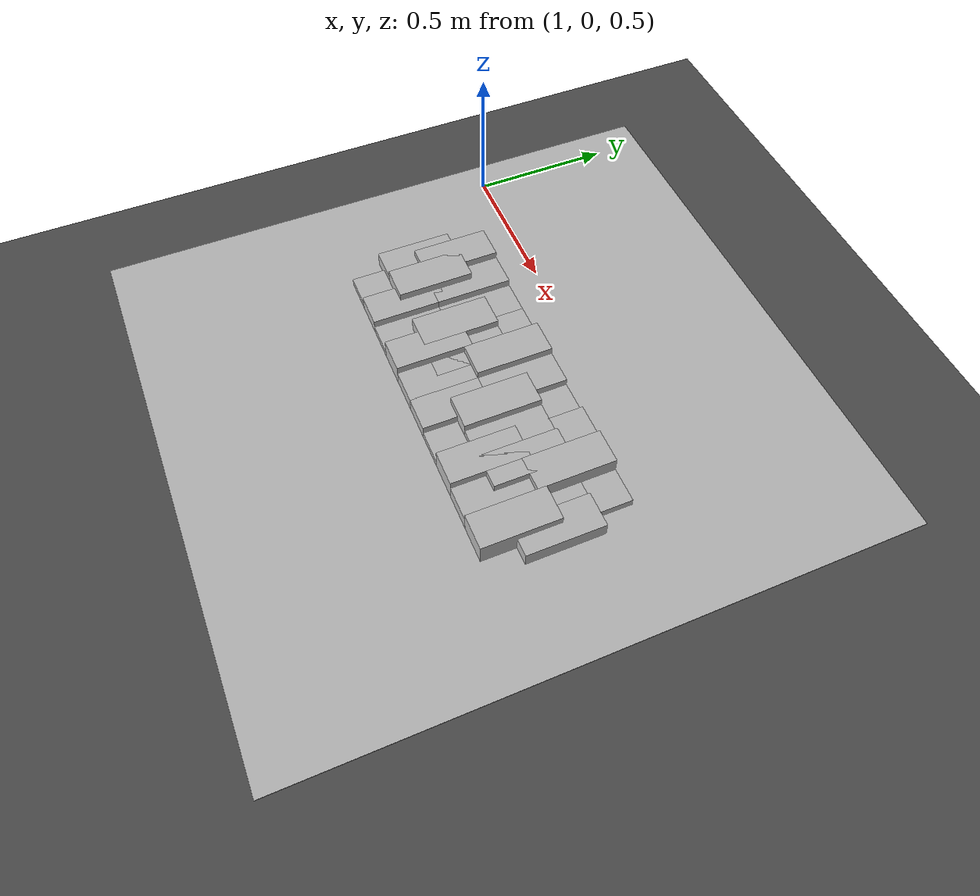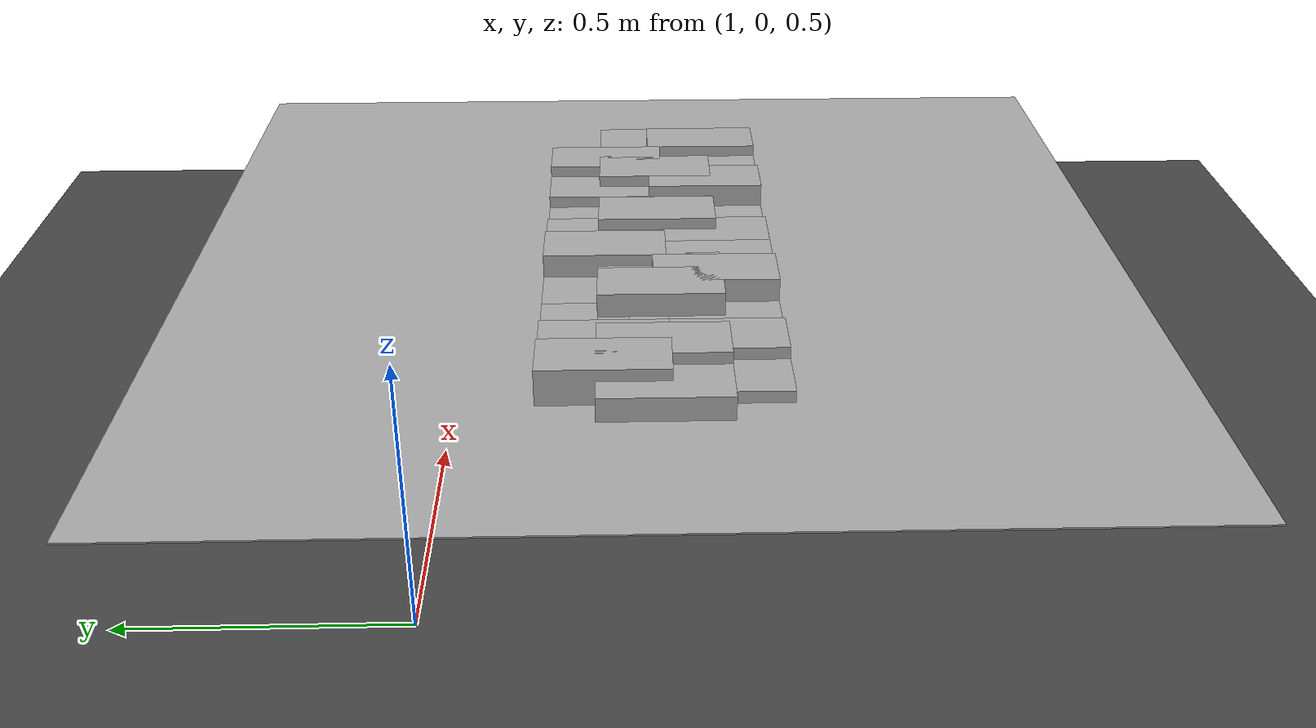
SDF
<sdf version="1.6">
 <world name="default">
  <model name="ground_plane">
   <static>1</static>
   <link name="link">
    <collision name="collision">
     <geometry><plane><normal>0 0 1</normal><size>100 100</size></plane></geometry>
     <surface><friction><ode><mu>100</mu><mu2>50</mu2></ode></friction></surface>
    </collision>
    <visual name="visual">
     <cast_shadows>0</cast_shadows>
     <geometry><plane><normal>0 0 1</normal><size>100 100</size></plane></geometry>
     <material>
      <script><uri>file://media/materials/scripts/gazebo.material</uri><name>Gazebo/Grey</name></script>
     </material>
    </visual>
   </link>
  </model>
  <model name="frc2016_roughterrain_0">
   <link name="link_clone_7">
    <pose>2.10114 -0.449355 -0.073164 0 -0 0</pose>
    <inertial>
     <inertia><ixx>nan</ixx><ixy>0</ixy><ixz>0</ixz><iyy>nan</iyy><iyz>0</iyz><izz>nan</izz></inertia>
     <mass>0</mass>
    </inertial>
    <visual name="row1_block3_md">
     <pose>0.28575 0.1143 0.10968 0 -0 0</pose>
     <geometry><box><size>0.115452 0.257474 0.0508</size></box></geometry>
     <material><shader type="pixel"/></material>
    </visual>
    <visual name="row1_block5_md">
     <pose>0.05715 0.1143 0.10968 0 -0 0</pose>
     <geometry><box><size>0.115452 0.257474 0.0508</size></box></geometry>
     <material><shader type="pixel"/></material>
    </visual>
    <visual name="row1_block4_sm">
     <pose>0.17145 0.1143 0.09698 0 -0 0</pose>
     <geometry><box><size>0.115452 0.257474 0.0254</size></box></geometry>
     <material><shader type="pixel"/></material>
    </visual>
    <visual name="platform">
     <pose>0 0 0.08269 0 -0 0</pose>
     <geometry><box><size>1.91826 2.01688 0.003175</size></box></geometry>
     <material><shader type="pixel"/></material>
    </visual>
    <visual name="row1_block1_sm">
     <pose>0.51435 0.1143 0.09698 0 -0 0</pose>
     <geometry><box><size>0.115452 0.257474 0.0254</size></box></geometry>
     <material><shader type="pixel"/></material>
    </visual>
    <visual name="row1_block2_lg">
     <pose>0.40005 0.1143 0.12238 0 -0 0</pose>
     <geometry><box><size>0.115452 0.257474 0.0762</size></box></geometry>
     <material><shader type="pixel"/></material>
    </visual>
    <visual name="row1_block6_lg">
     <pose>-0.05715 0.1143 0.12238 0 -0 0</pose>
     <geometry><box><size>0.115452 0.257474 0.0762</size></box></geometry>
     <material><shader type="pixel"/></material>
    </visual>
    <visual name="row1_block7_sm">
     <pose>-0.17145 0.1143 0.09698 0 -0 0</pose>
     <geometry><box><size>0.115452 0.257474 0.0254</size></box></geometry>
     <material><shader type="pixel"/></material>
    </visual>
    <visual name="row1_block9_md">
     <pose>-0.40005 0.1143 0.10968 0 -0 0</pose>
     <geometry><box><size>0.115452 0.257474 0.0508</size></box></geometry>
     <material><shader type="pixel"/></material>
    </visual>
    <visual name="row1_block8_sm">
     <pose>-0.28575 0.1143 0.09698 0 -0 0</pose>
     <geometry><box><size>0.115452 0.257474 0.0254</size></box></geometry>
     <material><shader type="pixel"/></material>
    </visual>
    <visual name="row1_block10_lg">
     <pose>-0.51435 0.1143 0.12238 0 -0 0</pose>
     <geometry><box><size>0.115452 0.257474 0.0762</size></box></geometry>
     <material><shader type="pixel"/></material>
    </visual>
    <visual name="row2_block1_md">
     <pose>0.5715 0 0.10968 0 -0 0</pose>
     <geometry><box><size>0.115452 0.257474 0.0508</size></box></geometry>
     <material><shader type="pixel"/></material>
    </visual>
    <visual name="row2_block3_lg">
     <pose>0.3429 0 0.12238 0 -0 0</pose>
     <geometry><box><size>0.115452 0.257474 0.0762</size></box></geometry>
     <material><shader type="pixel"/></material>
    </visual>
    <visual name="row2_block2_sm">
     <pose>0.4572 0 0.09698 0 -0 0</pose>
     <geometry><box><size>0.115452 0.257474 0.0254</size></box></geometry>
     <material><shader type="pixel"/></material>
    </visual>
    <visual name="row2_block4_md">
     <pose>0.2286 0 0.10968 0 -0 0</pose>
     <geometry><box><size>0.115452 0.257474 0.0508</size></box></geometry>
     <material><shader type="pixel"/></material>
    </visual>
    <visual name="row2_block5_lg">
     <pose>0.1143 0 0.12238 0 -0 0</pose>
     <geometry><box><size>0.115452 0.257474 0.0762</size></box></geometry>
     <material><shader type="pixel"/></material>
    </visual>
    <visual name="row2_block6_sm">
     <pose>0 0 0.09698 0 -0 0</pose>
     <geometry><box><size>0.115452 0.257474 0.0254</size></box></geometry>
     <material><shader type="pixel"/></material>
    </visual>
    <visual name="row2_block7_md">
     <pose>-0.1143 0 0.10968 0 -0 0</pose>
     <geometry><box><size>0.115452 0.257474 0.0508</size></box></geometry>
     <material><shader type="pixel"/></material>
    </visual>
    <visual name="row2_block8_lg">
     <pose>-0.2286 0 0.12238 0 -0 0</pose>
     <geometry><box><size>0.115452 0.257474 0.0762</size></box></geometry>
     <material><shader type="pixel"/></material>
    </visual>
    <visual name="row2_block9_sm">
     <pose>-0.3429 0 0.09698 0 -0 0</pose>
     <geometry><box><size>0.115452 0.257474 0.0254</size></box></geometry>
     <material><shader type="pixel"/></material>
    </visual>
    <visual name="row2_block10_lg">
     <pose>-0.4572 0 0.12238 0 -0 0</pose>
     <geometry><box><size>0.115452 0.257474 0.0762</size></box></geometry>
     <material><shader type="pixel"/></material>
    </visual>
    <visual name="row2_block11_md">
     <pose>-0.5715 0 0.10968 0 -0 0</pose>
     <geometry><box><size>0.115452 0.257474 0.0508</size></box></geometry>
     <material><shader type="pixel"/></material>
    </visual>
    <visual name="row3_block2_md">
     <pose>0.40005 -0.1143 0.10968 0 -0 0</pose>
     <geometry><box><size>0.115452 0.257474 0.0508</size></box></geometry>
     <material><shader type="pixel"/></material>
    </visual>
    <visual name="row3_block1_lg">
     <pose>0.51435 -0.1143 0.12238 0 -0 0</pose>
     <geometry><box><size>0.115452 0.257474 0.0762</size></box></geometry>
     <material><shader type="pixel"/></material>
    </visual>
    <visual name="row3_block3_lg">
     <pose>0.28575 -0.1143 0.12238 0 -0 0</pose>
     <geometry><box><size>0.115452 0.257474 0.0762</size></box></geometry>
     <material><shader type="pixel"/></material>
    </visual>
    <visual name="row3_block4_sm">
     <pose>0.17145 -0.1143 0.09698 0 -0 0</pose>
     <geometry><box><size>0.115452 0.257474 0.0254</size></box></geometry>
     <material><shader type="pixel"/></material>
    </visual>
    <visual name="row3_block5_md">
     <pose>0.05715 -0.1143 0.10968 0 -0 0</pose>
     <geometry><box><size>0.115452 0.257474 0.0508</size></box></geometry>
     <material><shader type="pixel"/></material>
    </visual>
    <visual name="row3_block6_md">
     <pose>-0.05715 -0.1143 0.10968 0 -0 0</pose>
     <geometry><box><size>0.115452 0.257474 0.0508</size></box></geometry>
     <material><shader type="pixel"/></material>
    </visual>
    <visual name="row3_block8_sm">
     <pose>-0.28575 -0.1143 0.09698 0 -0 0</pose>
     <geometry><box><size>0.115452 0.257474 0.0254</size></box></geometry>
     <material><shader type="pixel"/></material>
    </visual>
    <visual name="row3_block7_lg">
     <pose>-0.17145 -0.1143 0.12238 0 -0 0</pose>
     <geometry><box><size>0.115452 0.257474 0.0762</size></box></geometry>
     <material><shader type="pixel"/></material>
    </visual>
    <visual name="row3_block9_md">
     <pose>-0.40005 -0.1143 0.10968 0 -0 0</pose>
     <geometry><box><size>0.115452 0.257474 0.0508</size></box></geometry>
     <material><shader type="pixel"/></material>
    </visual>
    <visual name="row3_block10_sm">
     <pose>-0.51435 -0.1143 0.09698 0 -0 0</pose>
     <geometry><box><size>0.115452 0.257474 0.0254</size></box></geometry>
     <material><shader type="pixel"/></material>
    </visual>
    <collision name="row3_block6_md_0">
     <pose>-0.05715 -0.1143 0.10968 0 -0 0</pose>
     <geometry><box><size>0.115452 0.257474 0.0508</size></box></geometry>
     <surface>
      <friction>
       <ode><mu>1</mu><mu2>1</mu2><fdir1>0 0 0</fdir1><slip1>0</slip1><slip2>0</slip2></ode>
       <torsional>
        <coefficient>1</coefficient>
        <patch_radius>0</patch_radius>
        <surface_radius>0</surface_radius>
        <use_patch_radius>1</use_patch_radius>
        <ode><slip>0</slip></ode>
       </torsional>
      </friction>
      <bounce><restitution_coefficient>0</restitution_coefficient><threshold>1e+06</threshold></bounce>
      <contact>
       <collide_without_contact>0</collide_without_contact>
       <collide_without_contact_bitmask>1</collide_without_contact_bitmask>
       <collide_bitmask>1</collide_bitmask>
       <ode>
        <soft_cfm>0</soft_cfm>
        <soft_erp>0.2</soft_erp>
        <kp>1e+13</kp>
        <kd>1</kd>
        <max_vel>0.01</max_vel>
        <min_depth>0</min_depth>
       </ode>
       <bullet>
        <split_impulse>1</split_impulse>
        <split_impulse_penetration_threshold>-0.01</split_impulse_penetration_threshold>
        <soft_cfm>0</soft_cfm>
        <soft_erp>0.2</soft_erp>
        <kp>1e+13</kp>
        <kd>1</kd>
       </bullet>
      </contact>
     </surface>
    </collision>
    <collision name="row3_block8_sm_0">
     <pose>-0.28575 -0.1143 0.09698 0 -0 0</pose>
     <geometry><box><size>0.115452 0.257474 0.0254</size></box></geometry>
     <surface>
      <friction>
       <ode><mu>1</mu><mu2>1</mu2><fdir1>0 0 0</fdir1><slip1>0</slip1><slip2>0</slip2></ode>
       <torsional>
        <coefficient>1</coefficient>
        <patch_radius>0</patch_radius>
        <surface_radius>0</surface_radius>
        <use_patch_radius>1</use_patch_radius>
        <ode><slip>0</slip></ode>
       </torsional>
      </friction>
      <bounce><restitution_coefficient>0</restitution_coefficient><threshold>1e+06</threshold></bounce>
      <contact>
       <collide_without_contact>0</collide_without_contact>
       <collide_without_contact_bitmask>1</collide_without_contact_bitmask>
       <collide_bitmask>1</collide_bitmask>
       <ode>
        <soft_cfm>0</soft_cfm>
        <soft_erp>0.2</soft_erp>
        <kp>1e+13</kp>
        <kd>1</kd>
        <max_vel>0.01</max_vel>
        <min_depth>0</min_depth>
       </ode>
       <bullet>
        <split_impulse>1</split_impulse>
        <split_impulse_penetration_threshold>-0.01</split_impulse_penetration_threshold>
        <soft_cfm>0</soft_cfm>
        <soft_erp>0.2</soft_erp>
        <kp>1e+13</kp>
        <kd>1</kd>
       </bullet>
      </contact>
     </surface>
    </collision>
    <collision name="row2_block5_lg_0">
     <pose>0.1143 0 0.12238 0 -0 0</pose>
     <geometry><box><size>0.115452 0.257474 0.0762</size></box></geometry>
     <surface>
      <friction>
       <ode><mu>1</mu><mu2>1</mu2><fdir1>0 0 0</fdir1><slip1>0</slip1><slip2>0</slip2></ode>
       <torsional>
        <coefficient>1</coefficient>
        <patch_radius>0</patch_radius>
        <surface_radius>0</surface_radius>
        <use_patch_radius>1</use_patch_radius>
        <ode><slip>0</slip></ode>
       </torsional>
      </friction>
      <bounce><restitution_coefficient>0</restitution_coefficient><threshold>1e+06</threshold></bounce>
      <contact>
       <collide_without_contact>0</collide_without_contact>
       <collide_without_contact_bitmask>1</collide_without_contact_bitmask>
       <collide_bitmask>1</collide_bitmask>
       <ode>
        <soft_cfm>0</soft_cfm>
        <soft_erp>0.2</soft_erp>
        <kp>1e+13</kp>
        <kd>1</kd>
        <max_vel>0.01</max_vel>
        <min_depth>0</min_depth>
       </ode>
       <bullet>
        <split_impulse>1</split_impulse>
        <split_impulse_penetration_threshold>-0.01</split_impulse_penetration_threshold>
        <soft_cfm>0</soft_cfm>
        <soft_erp>0.2</soft_erp>
        <kp>1e+13</kp>
        <kd>1</kd>
       </bullet>
      </contact>
     </surface>
    </collision>
    <collision name="platform_0">
     <pose>0 0 0.08269 0 -0 0</pose>
     <geometry><box><size>1.91826 2.01688 0.003175</size></box></geometry>
     <surface>
      <friction>
       <ode><mu>1</mu><mu2>1</mu2><fdir1>0 0 0</fdir1><slip1>0</slip1><slip2>0</slip2></ode>
       <torsional>
        <coefficient>1</coefficient>
        <patch_radius>0</patch_radius>
        <surface_radius>0</surface_radius>
        <use_patch_radius>1</use_patch_radius>
        <ode><slip>0</slip></ode>
       </torsional>
      </friction>
      <bounce><restitution_coefficient>0</restitution_coefficient><threshold>1e+06</threshold></bounce>
      <contact>
       <collide_without_contact>0</collide_without_contact>
       <collide_without_contact_bitmask>1</collide_without_contact_bitmask>
       <collide_bitmask>1</collide_bitmask>
       <ode>
        <soft_cfm>0</soft_cfm>
        <soft_erp>0.2</soft_erp>
        <kp>1e+13</kp>
        <kd>1</kd>
        <max_vel>0.01</max_vel>
        <min_depth>0</min_depth>
       </ode>
       <bullet>
        <split_impulse>1</split_impulse>
        <split_impulse_penetration_threshold>-0.01</split_impulse_penetration_threshold>
        <soft_cfm>0</soft_cfm>
        <soft_erp>0.2</soft_erp>
        <kp>1e+13</kp>
        <kd>1</kd>
       </bullet>
      </contact>
     </surface>
    </collision>
    <collision name="row1_block2_lg_0">
     <pose>0.40005 0.1143 0.12238 0 -0 0</pose>
     <geometry><box><size>0.115452 0.257474 0.0762</size></box></geometry>
     <surface>
      <friction>
       <ode><mu>1</mu><mu2>1</mu2><fdir1>0 0 0</fdir1><slip1>0</slip1><slip2>0</slip2></ode>
       <torsional>
        <coefficient>1</coefficient>
        <patch_radius>0</patch_radius>
        <surface_radius>0</surface_radius>
        <use_patch_radius>1</use_patch_radius>
        <ode><slip>0</slip></ode>
       </torsional>
      </friction>
      <bounce><restitution_coefficient>0</restitution_coefficient><threshold>1e+06</threshold></bounce>
      <contact>
       <collide_without_contact>0</collide_without_contact>
       <collide_without_contact_bitmask>1</collide_without_contact_bitmask>
       <collide_bitmask>1</collide_bitmask>
       <ode>
        <soft_cfm>0</soft_cfm>
        <soft_erp>0.2</soft_erp>
        <kp>1e+13</kp>
        <kd>1</kd>
        <max_vel>0.01</max_vel>
        <min_depth>0</min_depth>
       </ode>
       <bullet>
        <split_impulse>1</split_impulse>
        <split_impulse_penetration_threshold>-0.01</split_impulse_penetration_threshold>
        <soft_cfm>0</soft_cfm>
        <soft_erp>0.2</soft_erp>
        <kp>1e+13</kp>
        <kd>1</kd>
       </bullet>
      </contact>
     </surface>
    </collision>
    <collision name="row1_block3_md_0">
     <pose>0.28575 0.1143 0.10968 0 -0 0</pose>
     <geometry><box><size>0.115452 0.257474 0.0508</size></box></geometry>
     <surface>
      <friction>
       <ode><mu>1</mu><mu2>1</mu2><fdir1>0 0 0</fdir1><slip1>0</slip1><slip2>0</slip2></ode>
       <torsional>
        <coefficient>1</coefficient>
        <patch_radius>0</patch_radius>
        <surface_radius>0</surface_radius>
        <use_patch_radius>1</use_patch_radius>
        <ode><slip>0</slip></ode>
       </torsional>
      </friction>
      <bounce><restitution_coefficient>0</restitution_coefficient><threshold>1e+06</threshold></bounce>
      <contact>
       <collide_without_contact>0</collide_without_contact>
       <collide_without_contact_bitmask>1</collide_without_contact_bitmask>
       <collide_bitmask>1</collide_bitmask>
       <ode>
        <soft_cfm>0</soft_cfm>
        <soft_erp>0.2</soft_erp>
        <kp>1e+13</kp>
        <kd>1</kd>
        <max_vel>0.01</max_vel>
        <min_depth>0</min_depth>
       </ode>
       <bullet>
        <split_impulse>1</split_impulse>
        <split_impulse_penetration_threshold>-0.01</split_impulse_penetration_threshold>
        <soft_cfm>0</soft_cfm>
        <soft_erp>0.2</soft_erp>
        <kp>1e+13</kp>
        <kd>1</kd>
       </bullet>
      </contact>
     </surface>
    </collision>
    <collision name="row1_block1_sm_0">
     <pose>0.51435 0.1143 0.09698 0 -0 0</pose>
     <geometry><box><size>0.115452 0.257474 0.0254</size></box></geometry>
     <surface>
      <friction>
       <ode><mu>1</mu><mu2>1</mu2><fdir1>0 0 0</fdir1><slip1>0</slip1><slip2>0</slip2></ode>
       <torsional>
        <coefficient>1</coefficient>
        <patch_radius>0</patch_radius>
        <surface_radius>0</surface_radius>
        <use_patch_radius>1</use_patch_radius>
        <ode><slip>0</slip></ode>
       </torsional>
      </friction>
      <bounce><restitution_coefficient>0</restitution_coefficient><threshold>1e+06</threshold></bounce>
      <contact>
       <collide_without_contact>0</collide_without_contact>
       <collide_without_contact_bitmask>1</collide_without_contact_bitmask>
       <collide_bitmask>1</collide_bitmask>
       <ode>
        <soft_cfm>0</soft_cfm>
        <soft_erp>0.2</soft_erp>
        <kp>1e+13</kp>
        <kd>1</kd>
        <max_vel>0.01</max_vel>
        <min_depth>0</min_depth>
       </ode>
       <bullet>
        <split_impulse>1</split_impulse>
        <split_impulse_penetration_threshold>-0.01</split_impulse_penetration_threshold>
        <soft_cfm>0</soft_cfm>
        <soft_erp>0.2</soft_erp>
        <kp>1e+13</kp>
        <kd>1</kd>
       </bullet>
      </contact>
     </surface>
    </collision>
    <collision name="row1_block5_md_0">
     <pose>0.05715 0.1143 0.10968 0 -0 0</pose>
     <geometry><box><size>0.115452 0.257474 0.0508</size></box></geometry>
     <surface>
      <friction>
       <ode><mu>1</mu><mu2>1</mu2><fdir1>0 0 0</fdir1><slip1>0</slip1><slip2>0</slip2></ode>
       <torsional>
        <coefficient>1</coefficient>
        <patch_radius>0</patch_radius>
        <surface_radius>0</surface_radius>
        <use_patch_radius>1</use_patch_radius>
        <ode><slip>0</slip></ode>
       </torsional>
      </friction>
      <bounce><restitution_coefficient>0</restitution_coefficient><threshold>1e+06</threshold></bounce>
      <contact>
       <collide_without_contact>0</collide_without_contact>
       <collide_without_contact_bitmask>1</collide_without_contact_bitmask>
       <collide_bitmask>1</collide_bitmask>
       <ode>
        <soft_cfm>0</soft_cfm>
        <soft_erp>0.2</soft_erp>
        <kp>1e+13</kp>
        <kd>1</kd>
        <max_vel>0.01</max_vel>
        <min_depth>0</min_depth>
       </ode>
       <bullet>
        <split_impulse>1</split_impulse>
        <split_impulse_penetration_threshold>-0.01</split_impulse_penetration_threshold>
        <soft_cfm>0</soft_cfm>
        <soft_erp>0.2</soft_erp>
        <kp>1e+13</kp>
        <kd>1</kd>
       </bullet>
      </contact>
     </surface>
    </collision>
    <collision name="row1_block4_sm_0">
     <pose>0.17145 0.1143 0.09698 0 -0 0</pose>
     <geometry><box><size>0.115452 0.257474 0.0254</size></box></geometry>
     <surface>
      <friction>
       <ode><mu>1</mu><mu2>1</mu2><fdir1>0 0 0</fdir1><slip1>0</slip1><slip2>0</slip2></ode>
       <torsional>
        <coefficient>1</coefficient>
        <patch_radius>0</patch_radius>
        <surface_radius>0</surface_radius>
        <use_patch_radius>1</use_patch_radius>
        <ode><slip>0</slip></ode>
       </torsional>
      </friction>
      <bounce><restitution_coefficient>0</restitution_coefficient><threshold>1e+06</threshold></bounce>
      <contact>
       <collide_without_contact>0</collide_without_contact>
       <collide_without_contact_bitmask>1</collide_without_contact_bitmask>
       <collide_bitmask>1</collide_bitmask>
       <ode>
        <soft_cfm>0</soft_cfm>
        <soft_erp>0.2</soft_erp>
        <kp>1e+13</kp>
        <kd>1</kd>
        <max_vel>0.01</max_vel>
        <min_depth>0</min_depth>
       </ode>
       <bullet>
        <split_impulse>1</split_impulse>
        <split_impulse_penetration_threshold>-0.01</split_impulse_penetration_threshold>
        <soft_cfm>0</soft_cfm>
        <soft_erp>0.2</soft_erp>
        <kp>1e+13</kp>
        <kd>1</kd>
       </bullet>
      </contact>
     </surface>
    </collision>
    <collision name="row1_block6_lg_0">
     <pose>-0.05715 0.1143 0.12238 0 -0 0</pose>
     <geometry><box><size>0.115452 0.257474 0.0762</size></box></geometry>
     <surface>
      <friction>
       <ode><mu>1</mu><mu2>1</mu2><fdir1>0 0 0</fdir1><slip1>0</slip1><slip2>0</slip2></ode>
       <torsional>
        <coefficient>1</coefficient>
        <patch_radius>0</patch_radius>
        <surface_radius>0</surface_radius>
        <use_patch_radius>1</use_patch_radius>
        <ode><slip>0</slip></ode>
       </torsional>
      </friction>
      <bounce><restitution_coefficient>0</restitution_coefficient><threshold>1e+06</threshold></bounce>
      <contact>
       <collide_without_contact>0</collide_without_contact>
       <collide_without_contact_bitmask>1</collide_without_contact_bitmask>
       <collide_bitmask>1</collide_bitmask>
       <ode>
        <soft_cfm>0</soft_cfm>
        <soft_erp>0.2</soft_erp>
        <kp>1e+13</kp>
        <kd>1</kd>
        <max_vel>0.01</max_vel>
        <min_depth>0</min_depth>
       </ode>
       <bullet>
        <split_impulse>1</split_impulse>
        <split_impulse_penetration_threshold>-0.01</split_impulse_penetration_threshold>
        <soft_cfm>0</soft_cfm>
        <soft_erp>0.2</soft_erp>
        <kp>1e+13</kp>
        <kd>1</kd>
       </bullet>
      </contact>
     </surface>
    </collision>
    <collision name="row1_block7_sm_0">
     <pose>-0.17145 0.1143 0.09698 0 -0 0</pose>
     <geometry><box><size>0.115452 0.257474 0.0254</size></box></geometry>
     <surface>
      <friction>
       <ode><mu>1</mu><mu2>1</mu2><fdir1>0 0 0</fdir1><slip1>0</slip1><slip2>0</slip2></ode>
       <torsional>
        <coefficient>1</coefficient>
        <patch_radius>0</patch_radius>
        <surface_radius>0</surface_radius>
        <use_patch_radius>1</use_patch_radius>
        <ode><slip>0</slip></ode>
       </torsional>
      </friction>
      <bounce><restitution_coefficient>0</restitution_coefficient><threshold>1e+06</threshold></bounce>
      <contact>
       <collide_without_contact>0</collide_without_contact>
       <collide_without_contact_bitmask>1</collide_without_contact_bitmask>
       <collide_bitmask>1</collide_bitmask>
       <ode>
        <soft_cfm>0</soft_cfm>
        <soft_erp>0.2</soft_erp>
        <kp>1e+13</kp>
        <kd>1</kd>
        <max_vel>0.01</max_vel>
        <min_depth>0</min_depth>
       </ode>
       <bullet>
        <split_impulse>1</split_impulse>
        <split_impulse_penetration_threshold>-0.01</split_impulse_penetration_threshold>
        <soft_cfm>0</soft_cfm>
        <soft_erp>0.2</soft_erp>
        <kp>1e+13</kp>
        <kd>1</kd>
       </bullet>
      </contact>
     </surface>
    </collision>
    <collision name="row1_block8_sm_0">
     <pose>-0.28575 0.1143 0.09698 0 -0 0</pose>
     <geometry><box><size>0.115452 0.257474 0.0254</size></box></geometry>
     <surface>
      <friction>
       <ode><mu>1</mu><mu2>1</mu2><fdir1>0 0 0</fdir1><slip1>0</slip1><slip2>0</slip2></ode>
       <torsional>
        <coefficient>1</coefficient>
        <patch_radius>0</patch_radius>
        <surface_radius>0</surface_radius>
        <use_patch_radius>1</use_patch_radius>
        <ode><slip>0</slip></ode>
       </torsional>
      </friction>
      <bounce><restitution_coefficient>0</restitution_coefficient><threshold>1e+06</threshold></bounce>
      <contact>
       <collide_without_contact>0</collide_without_contact>
       <collide_without_contact_bitmask>1</collide_without_contact_bitmask>
       <collide_bitmask>1</collide_bitmask>
       <ode>
        <soft_cfm>0</soft_cfm>
        <soft_erp>0.2</soft_erp>
        <kp>1e+13</kp>
        <kd>1</kd>
        <max_vel>0.01</max_vel>
        <min_depth>0</min_depth>
       </ode>
       <bullet>
        <split_impulse>1</split_impulse>
        <split_impulse_penetration_threshold>-0.01</split_impulse_penetration_threshold>
        <soft_cfm>0</soft_cfm>
        <soft_erp>0.2</soft_erp>
        <kp>1e+13</kp>
        <kd>1</kd>
       </bullet>
      </contact>
     </surface>
    </collision>
    <collision name="row2_block1_md_0">
     <pose>0.5715 0 0.10968 0 -0 0</pose>
     <geometry><box><size>0.115452 0.257474 0.0508</size></box></geometry>
     <surface>
      <friction>
       <ode><mu>1</mu><mu2>1</mu2><fdir1>0 0 0</fdir1><slip1>0</slip1><slip2>0</slip2></ode>
       <torsional>
        <coefficient>1</coefficient>
        <patch_radius>0</patch_radius>
        <surface_radius>0</surface_radius>
        <use_patch_radius>1</use_patch_radius>
        <ode><slip>0</slip></ode>
       </torsional>
      </friction>
      <bounce><restitution_coefficient>0</restitution_coefficient><threshold>1e+06</threshold></bounce>
      <contact>
       <collide_without_contact>0</collide_without_contact>
       <collide_without_contact_bitmask>1</collide_without_contact_bitmask>
       <collide_bitmask>1</collide_bitmask>
       <ode>
        <soft_cfm>0</soft_cfm>
        <soft_erp>0.2</soft_erp>
        <kp>1e+13</kp>
        <kd>1</kd>
        <max_vel>0.01</max_vel>
        <min_depth>0</min_depth>
       </ode>
       <bullet>
        <split_impulse>1</split_impulse>
        <split_impulse_penetration_threshold>-0.01</split_impulse_penetration_threshold>
        <soft_cfm>0</soft_cfm>
        <soft_erp>0.2</soft_erp>
        <kp>1e+13</kp>
        <kd>1</kd>
       </bullet>
      </contact>
     </surface>
    </collision>
    <collision name="row1_block10_lg_0">
     <pose>-0.51435 0.1143 0.12238 0 -0 0</pose>
     <geometry><box><size>0.115452 0.257474 0.0762</size></box></geometry>
     <surface>
      <friction>
       <ode><mu>1</mu><mu2>1</mu2><fdir1>0 0 0</fdir1><slip1>0</slip1><slip2>0</slip2></ode>
       <torsional>
        <coefficient>1</coefficient>
        <patch_radius>0</patch_radius>
        <surface_radius>0</surface_radius>
        <use_patch_radius>1</use_patch_radius>
        <ode><slip>0</slip></ode>
       </torsional>
      </friction>
      <bounce><restitution_coefficient>0</restitution_coefficient><threshold>1e+06</threshold></bounce>
      <contact>
       <collide_without_contact>0</collide_without_contact>
       <collide_without_contact_bitmask>1</collide_without_contact_bitmask>
       <collide_bitmask>1</collide_bitmask>
       <ode>
        <soft_cfm>0</soft_cfm>
        <soft_erp>0.2</soft_erp>
        <kp>1e+13</kp>
        <kd>1</kd>
        <max_vel>0.01</max_vel>
        <min_depth>0</min_depth>
       </ode>
       <bullet>
        <split_impulse>1</split_impulse>
        <split_impulse_penetration_threshold>-0.01</split_impulse_penetration_threshold>
        <soft_cfm>0</soft_cfm>
        <soft_erp>0.2</soft_erp>
        <kp>1e+13</kp>
        <kd>1</kd>
       </bullet>
      </contact>
     </surface>
    </collision>
    <collision name="row1_block9_md_0">
     <pose>-0.40005 0.1143 0.10968 0 -0 0</pose>
     <geometry><box><size>0.115452 0.257474 0.0508</size></box></geometry>
     <surface>
      <friction>
       <ode><mu>1</mu><mu2>1</mu2><fdir1>0 0 0</fdir1><slip1>0</slip1><slip2>0</slip2></ode>
       <torsional>
        <coefficient>1</coefficient>
        <patch_radius>0</patch_radius>
        <surface_radius>0</surface_radius>
        <use_patch_radius>1</use_patch_radius>
        <ode><slip>0</slip></ode>
       </torsional>
      </friction>
      <bounce><restitution_coefficient>0</restitution_coefficient><threshold>1e+06</threshold></bounce>
      <contact>
       <collide_without_contact>0</collide_without_contact>
       <collide_without_contact_bitmask>1</collide_without_contact_bitmask>
       <collide_bitmask>1</collide_bitmask>
       <ode>
        <soft_cfm>0</soft_cfm>
        <soft_erp>0.2</soft_erp>
        <kp>1e+13</kp>
        <kd>1</kd>
        <max_vel>0.01</max_vel>
        <min_depth>0</min_depth>
       </ode>
       <bullet>
        <split_impulse>1</split_impulse>
        <split_impulse_penetration_threshold>-0.01</split_impulse_penetration_threshold>
        <soft_cfm>0</soft_cfm>
        <soft_erp>0.2</soft_erp>
        <kp>1e+13</kp>
        <kd>1</kd>
       </bullet>
      </contact>
     </surface>
    </collision>
    <collision name="row2_block4_md_0">
     <pose>0.2286 0 0.10968 0 -0 0</pose>
     <geometry><box><size>0.115452 0.257474 0.0508</size></box></geometry>
     <surface>
      <friction>
       <ode><mu>1</mu><mu2>1</mu2><fdir1>0 0 0</fdir1><slip1>0</slip1><slip2>0</slip2></ode>
       <torsional>
        <coefficient>1</coefficient>
        <patch_radius>0</patch_radius>
        <surface_radius>0</surface_radius>
        <use_patch_radius>1</use_patch_radius>
        <ode><slip>0</slip></ode>
       </torsional>
      </friction>
      <bounce><restitution_coefficient>0</restitution_coefficient><threshold>1e+06</threshold></bounce>
      <contact>
       <collide_without_contact>0</collide_without_contact>
       <collide_without_contact_bitmask>1</collide_without_contact_bitmask>
       <collide_bitmask>1</collide_bitmask>
       <ode>
        <soft_cfm>0</soft_cfm>
        <soft_erp>0.2</soft_erp>
        <kp>1e+13</kp>
        <kd>1</kd>
        <max_vel>0.01</max_vel>
        <min_depth>0</min_depth>
       </ode>
       <bullet>
        <split_impulse>1</split_impulse>
        <split_impulse_penetration_threshold>-0.01</split_impulse_penetration_threshold>
        <soft_cfm>0</soft_cfm>
        <soft_erp>0.2</soft_erp>
        <kp>1e+13</kp>
        <kd>1</kd>
       </bullet>
      </contact>
     </surface>
    </collision>
    <collision name="row2_block3_lg_0">
     <pose>0.3429 0 0.12238 0 -0 0</pose>
     <geometry><box><size>0.115452 0.257474 0.0762</size></box></geometry>
     <surface>
      <friction>
       <ode><mu>1</mu><mu2>1</mu2><fdir1>0 0 0</fdir1><slip1>0</slip1><slip2>0</slip2></ode>
       <torsional>
        <coefficient>1</coefficient>
        <patch_radius>0</patch_radius>
        <surface_radius>0</surface_radius>
        <use_patch_radius>1</use_patch_radius>
        <ode><slip>0</slip></ode>
       </torsional>
      </friction>
      <bounce><restitution_coefficient>0</restitution_coefficient><threshold>1e+06</threshold></bounce>
      <contact>
       <collide_without_contact>0</collide_without_contact>
       <collide_without_contact_bitmask>1</collide_without_contact_bitmask>
       <collide_bitmask>1</collide_bitmask>
       <ode>
        <soft_cfm>0</soft_cfm>
        <soft_erp>0.2</soft_erp>
        <kp>1e+13</kp>
        <kd>1</kd>
        <max_vel>0.01</max_vel>
        <min_depth>0</min_depth>
       </ode>
       <bullet>
        <split_impulse>1</split_impulse>
        <split_impulse_penetration_threshold>-0.01</split_impulse_penetration_threshold>
        <soft_cfm>0</soft_cfm>
        <soft_erp>0.2</soft_erp>
        <kp>1e+13</kp>
        <kd>1</kd>
       </bullet>
      </contact>
     </surface>
    </collision>
    <collision name="row2_block2_sm_0">
     <pose>0.4572 0 0.09698 0 -0 0</pose>
     <geometry><box><size>0.115452 0.257474 0.0254</size></box></geometry>
     <surface>
      <friction>
       <ode><mu>1</mu><mu2>1</mu2><fdir1>0 0 0</fdir1><slip1>0</slip1><slip2>0</slip2></ode>
       <torsional>
        <coefficient>1</coefficient>
        <patch_radius>0</patch_radius>
        <surface_radius>0</surface_radius>
        <use_patch_radius>1</use_patch_radius>
        <ode><slip>0</slip></ode>
       </torsional>
      </friction>
      <bounce><restitution_coefficient>0</restitution_coefficient><threshold>1e+06</threshold></bounce>
      <contact>
       <collide_without_contact>0</collide_without_contact>
       <collide_without_contact_bitmask>1</collide_without_contact_bitmask>
       <collide_bitmask>1</collide_bitmask>
       <ode>
        <soft_cfm>0</soft_cfm>
        <soft_erp>0.2</soft_erp>
        <kp>1e+13</kp>
        <kd>1</kd>
        <max_vel>0.01</max_vel>
        <min_depth>0</min_depth>
       </ode>
       <bullet>
        <split_impulse>1</split_impulse>
        <split_impulse_penetration_threshold>-0.01</split_impulse_penetration_threshold>
        <soft_cfm>0</soft_cfm>
        <soft_erp>0.2</soft_erp>
        <kp>1e+13</kp>
        <kd>1</kd>
       </bullet>
      </contact>
     </surface>
    </collision>
    <collision name="row2_block6_sm_0">
     <pose>0 0 0.09698 0 -0 0</pose>
     <geometry><box><size>0.115452 0.257474 0.0254</size></box></geometry>
     <surface>
      <friction>
       <ode><mu>1</mu><mu2>1</mu2><fdir1>0 0 0</fdir1><slip1>0</slip1><slip2>0</slip2></ode>
       <torsional>
        <coefficient>1</coefficient>
        <patch_radius>0</patch_radius>
        <surface_radius>0</surface_radius>
        <use_patch_radius>1</use_patch_radius>
        <ode><slip>0</slip></ode>
       </torsional>
      </friction>
      <bounce><restitution_coefficient>0</restitution_coefficient><threshold>1e+06</threshold></bounce>
      <contact>
       <collide_without_contact>0</collide_without_contact>
       <collide_without_contact_bitmask>1</collide_without_contact_bitmask>
       <collide_bitmask>1</collide_bitmask>
       <ode>
        <soft_cfm>0</soft_cfm>
        <soft_erp>0.2</soft_erp>
        <kp>1e+13</kp>
        <kd>1</kd>
        <max_vel>0.01</max_vel>
        <min_depth>0</min_depth>
       </ode>
       <bullet>
        <split_impulse>1</split_impulse>
        <split_impulse_penetration_threshold>-0.01</split_impulse_penetration_threshold>
        <soft_cfm>0</soft_cfm>
        <soft_erp>0.2</soft_erp>
        <kp>1e+13</kp>
        <kd>1</kd>
       </bullet>
      </contact>
     </surface>
    </collision>
    <collision name="row2_block10_lg_0">
     <pose>-0.4572 0 0.12238 0 -0 0</pose>
     <geometry><box><size>0.115452 0.257474 0.0762</size></box></geometry>
     <surface>
      <friction>
       <ode><mu>1</mu><mu2>1</mu2><fdir1>0 0 0</fdir1><slip1>0</slip1><slip2>0</slip2></ode>
       <torsional>
        <coefficient>1</coefficient>
        <patch_radius>0</patch_radius>
        <surface_radius>0</surface_radius>
        <use_patch_radius>1</use_patch_radius>
        <ode><slip>0</slip></ode>
       </torsional>
      </friction>
      <bounce><restitution_coefficient>0</restitution_coefficient><threshold>1e+06</threshold></bounce>
      <contact>
       <collide_without_contact>0</collide_without_contact>
       <collide_without_contact_bitmask>1</collide_without_contact_bitmask>
       <collide_bitmask>1</collide_bitmask>
       <ode>
        <soft_cfm>0</soft_cfm>
        <soft_erp>0.2</soft_erp>
        <kp>1e+13</kp>
        <kd>1</kd>
        <max_vel>0.01</max_vel>
        <min_depth>0</min_depth>
       </ode>
       <bullet>
        <split_impulse>1</split_impulse>
        <split_impulse_penetration_threshold>-0.01</split_impulse_penetration_threshold>
        <soft_cfm>0</soft_cfm>
        <soft_erp>0.2</soft_erp>
        <kp>1e+13</kp>
        <kd>1</kd>
       </bullet>
      </contact>
     </surface>
    </collision>
    <collision name="row2_block7_md_0">
     <pose>-0.1143 0 0.10968 0 -0 0</pose>
     <geometry><box><size>0.115452 0.257474 0.0508</size></box></geometry>
     <surface>
      <friction>
       <ode><mu>1</mu><mu2>1</mu2><fdir1>0 0 0</fdir1><slip1>0</slip1><slip2>0</slip2></ode>
       <torsional>
        <coefficient>1</coefficient>
        <patch_radius>0</patch_radius>
        <surface_radius>0</surface_radius>
        <use_patch_radius>1</use_patch_radius>
        <ode><slip>0</slip></ode>
       </torsional>
      </friction>
      <bounce><restitution_coefficient>0</restitution_coefficient><threshold>1e+06</threshold></bounce>
      <contact>
       <collide_without_contact>0</collide_without_contact>
       <collide_without_contact_bitmask>1</collide_without_contact_bitmask>
       <collide_bitmask>1</collide_bitmask>
       <ode>
        <soft_cfm>0</soft_cfm>
        <soft_erp>0.2</soft_erp>
        <kp>1e+13</kp>
        <kd>1</kd>
        <max_vel>0.01</max_vel>
        <min_depth>0</min_depth>
       </ode>
       <bullet>
        <split_impulse>1</split_impulse>
        <split_impulse_penetration_threshold>-0.01</split_impulse_penetration_threshold>
        <soft_cfm>0</soft_cfm>
        <soft_erp>0.2</soft_erp>
        <kp>1e+13</kp>
        <kd>1</kd>
       </bullet>
      </contact>
     </surface>
    </collision>
    <collision name="row2_block8_lg_0">
     <pose>-0.2286 0 0.12238 0 -0 0</pose>
     <geometry><box><size>0.115452 0.257474 0.0762</size></box></geometry>
     <surface>
      <friction>
       <ode><mu>1</mu><mu2>1</mu2><fdir1>0 0 0</fdir1><slip1>0</slip1><slip2>0</slip2></ode>
       <torsional>
        <coefficient>1</coefficient>
        <patch_radius>0</patch_radius>
        <surface_radius>0</surface_radius>
        <use_patch_radius>1</use_patch_radius>
        <ode><slip>0</slip></ode>
       </torsional>
      </friction>
      <bounce><restitution_coefficient>0</restitution_coefficient><threshold>1e+06</threshold></bounce>
      <contact>
       <collide_without_contact>0</collide_without_contact>
       <collide_without_contact_bitmask>1</collide_without_contact_bitmask>
       <collide_bitmask>1</collide_bitmask>
       <ode>
        <soft_cfm>0</soft_cfm>
        <soft_erp>0.2</soft_erp>
        <kp>1e+13</kp>
        <kd>1</kd>
        <max_vel>0.01</max_vel>
        <min_depth>0</min_depth>
       </ode>
       <bullet>
        <split_impulse>1</split_impulse>
        <split_impulse_penetration_threshold>-0.01</split_impulse_penetration_threshold>
        <soft_cfm>0</soft_cfm>
        <soft_erp>0.2</soft_erp>
        <kp>1e+13</kp>
        <kd>1</kd>
       </bullet>
      </contact>
     </surface>
    </collision>
    <collision name="row2_block9_sm_0">
     <pose>-0.3429 0 0.09698 0 -0 0</pose>
     <geometry><box><size>0.115452 0.257474 0.0254</size></box></geometry>
     <surface>
      <friction>
       <ode><mu>1</mu><mu2>1</mu2><fdir1>0 0 0</fdir1><slip1>0</slip1><slip2>0</slip2></ode>
       <torsional>
        <coefficient>1</coefficient>
        <patch_radius>0</patch_radius>
        <surface_radius>0</surface_radius>
        <use_patch_radius>1</use_patch_radius>
        <ode><slip>0</slip></ode>
       </torsional>
      </friction>
      <bounce><restitution_coefficient>0</restitution_coefficient><threshold>1e+06</threshold></bounce>
      <contact>
       <collide_without_contact>0</collide_without_contact>
       <collide_without_contact_bitmask>1</collide_without_contact_bitmask>
       <collide_bitmask>1</collide_bitmask>
       <ode>
        <soft_cfm>0</soft_cfm>
        <soft_erp>0.2</soft_erp>
        <kp>1e+13</kp>
        <kd>1</kd>
        <max_vel>0.01</max_vel>
        <min_depth>0</min_depth>
       </ode>
       <bullet>
        <split_impulse>1</split_impulse>
        <split_impulse_penetration_threshold>-0.01</split_impulse_penetration_threshold>
        <soft_cfm>0</soft_cfm>
        <soft_erp>0.2</soft_erp>
        <kp>1e+13</kp>
        <kd>1</kd>
       </bullet>
      </contact>
     </surface>
    </collision>
    <collision name="row2_block11_md_0">
     <pose>-0.5715 0 0.10968 0 -0 0</pose>
     <geometry><box><size>0.115452 0.257474 0.0508</size></box></geometry>
     <surface>
      <friction>
       <ode><mu>1</mu><mu2>1</mu2><fdir1>0 0 0</fdir1><slip1>0</slip1><slip2>0</slip2></ode>
       <torsional>
        <coefficient>1</coefficient>
        <patch_radius>0</patch_radius>
        <surface_radius>0</surface_radius>
        <use_patch_radius>1</use_patch_radius>
        <ode><slip>0</slip></ode>
       </torsional>
      </friction>
      <bounce><restitution_coefficient>0</restitution_coefficient><threshold>1e+06</threshold></bounce>
      <contact>
       <collide_without_contact>0</collide_without_contact>
       <collide_without_contact_bitmask>1</collide_without_contact_bitmask>
       <collide_bitmask>1</collide_bitmask>
       <ode>
        <soft_cfm>0</soft_cfm>
        <soft_erp>0.2</soft_erp>
        <kp>1e+13</kp>
        <kd>1</kd>
        <max_vel>0.01</max_vel>
        <min_depth>0</min_depth>
       </ode>
       <bullet>
        <split_impulse>1</split_impulse>
        <split_impulse_penetration_threshold>-0.01</split_impulse_penetration_threshold>
        <soft_cfm>0</soft_cfm>
        <soft_erp>0.2</soft_erp>
        <kp>1e+13</kp>
        <kd>1</kd>
       </bullet>
      </contact>
     </surface>
    </collision>
    <collision name="row3_block1_lg_0">
     <pose>0.51435 -0.1143 0.12238 0 -0 0</pose>
     <geometry><box><size>0.115452 0.257474 0.0762</size></box></geometry>
     <surface>
      <friction>
       <ode><mu>1</mu><mu2>1</mu2><fdir1>0 0 0</fdir1><slip1>0</slip1><slip2>0</slip2></ode>
       <torsional>
        <coefficient>1</coefficient>
        <patch_radius>0</patch_radius>
        <surface_radius>0</surface_radius>
        <use_patch_radius>1</use_patch_radius>
        <ode><slip>0</slip></ode>
       </torsional>
      </friction>
      <bounce><restitution_coefficient>0</restitution_coefficient><threshold>1e+06</threshold></bounce>
      <contact>
       <collide_without_contact>0</collide_without_contact>
       <collide_without_contact_bitmask>1</collide_without_contact_bitmask>
       <collide_bitmask>1</collide_bitmask>
       <ode>
        <soft_cfm>0</soft_cfm>
        <soft_erp>0.2</soft_erp>
        <kp>1e+13</kp>
        <kd>1</kd>
        <max_vel>0.01</max_vel>
        <min_depth>0</min_depth>
       </ode>
       <bullet>
        <split_impulse>1</split_impulse>
        <split_impulse_penetration_threshold>-0.01</split_impulse_penetration_threshold>
        <soft_cfm>0</soft_cfm>
        <soft_erp>0.2</soft_erp>
        <kp>1e+13</kp>
        <kd>1</kd>
       </bullet>
      </contact>
     </surface>
    </collision>
    <collision name="row3_block2_md_0">
     <pose>0.40005 -0.1143 0.10968 0 -0 0</pose>
     <geometry><box><size>0.115452 0.257474 0.0508</size></box></geometry>
     <surface>
      <friction>
       <ode><mu>1</mu><mu2>1</mu2><fdir1>0 0 0</fdir1><slip1>0</slip1><slip2>0</slip2></ode>
       <torsional>
        <coefficient>1</coefficient>
        <patch_radius>0</patch_radius>
        <surface_radius>0</surface_radius>
        <use_patch_radius>1</use_patch_radius>
        <ode><slip>0</slip></ode>
       </torsional>
      </friction>
      <bounce><restitution_coefficient>0</restitution_coefficient><threshold>1e+06</threshold></bounce>
      <contact>
       <collide_without_contact>0</collide_without_contact>
       <collide_without_contact_bitmask>1</collide_without_contact_bitmask>
       <collide_bitmask>1</collide_bitmask>
       <ode>
        <soft_cfm>0</soft_cfm>
        <soft_erp>0.2</soft_erp>
        <kp>1e+13</kp>
        <kd>1</kd>
        <max_vel>0.01</max_vel>
        <min_depth>0</min_depth>
       </ode>
       <bullet>
        <split_impulse>1</split_impulse>
        <split_impulse_penetration_threshold>-0.01</split_impulse_penetration_threshold>
        <soft_cfm>0</soft_cfm>
        <soft_erp>0.2</soft_erp>
        <kp>1e+13</kp>
        <kd>1</kd>
       </bullet>
      </contact>
     </surface>
    </collision>
    <collision name="row3_block3_lg_0">
     <pose>0.28575 -0.1143 0.12238 0 -0 0</pose>
     <geometry><box><size>0.115452 0.257474 0.0762</size></box></geometry>
     <surface>
      <friction>
       <ode><mu>1</mu><mu2>1</mu2><fdir1>0 0 0</fdir1><slip1>0</slip1><slip2>0</slip2></ode>
       <torsional>
        <coefficient>1</coefficient>
        <patch_radius>0</patch_radius>
        <surface_radius>0</surface_radius>
        <use_patch_radius>1</use_patch_radius>
        <ode><slip>0</slip></ode>
       </torsional>
      </friction>
      <bounce><restitution_coefficient>0</restitution_coefficient><threshold>1e+06</threshold></bounce>
      <contact>
       <collide_without_contact>0</collide_without_contact>
       <collide_without_contact_bitmask>1</collide_without_contact_bitmask>
       <collide_bitmask>1</collide_bitmask>
       <ode>
        <soft_cfm>0</soft_cfm>
        <soft_erp>0.2</soft_erp>
        <kp>1e+13</kp>
        <kd>1</kd>
        <max_vel>0.01</max_vel>
        <min_depth>0</min_depth>
       </ode>
       <bullet>
        <split_impulse>1</split_impulse>
        <split_impulse_penetration_threshold>-0.01</split_impulse_penetration_threshold>
        <soft_cfm>0</soft_cfm>
        <soft_erp>0.2</soft_erp>
        <kp>1e+13</kp>
        <kd>1</kd>
       </bullet>
      </contact>
     </surface>
    </collision>
    <collision name="row3_block4_sm_0">
     <pose>0.17145 -0.1143 0.09698 0 -0 0</pose>
     <geometry><box><size>0.115452 0.257474 0.0254</size></box></geometry>
     <surface>
      <friction>
       <ode><mu>1</mu><mu2>1</mu2><fdir1>0 0 0</fdir1><slip1>0</slip1><slip2>0</slip2></ode>
       <torsional>
        <coefficient>1</coefficient>
        <patch_radius>0</patch_radius>
        <surface_radius>0</surface_radius>
        <use_patch_radius>1</use_patch_radius>
        <ode><slip>0</slip></ode>
       </torsional>
      </friction>
      <bounce><restitution_coefficient>0</restitution_coefficient><threshold>1e+06</threshold></bounce>
      <contact>
       <collide_without_contact>0</collide_without_contact>
       <collide_without_contact_bitmask>1</collide_without_contact_bitmask>
       <collide_bitmask>1</collide_bitmask>
       <ode>
        <soft_cfm>0</soft_cfm>
        <soft_erp>0.2</soft_erp>
        <kp>1e+13</kp>
        <kd>1</kd>
        <max_vel>0.01</max_vel>
        <min_depth>0</min_depth>
       </ode>
       <bullet>
        <split_impulse>1</split_impulse>
        <split_impulse_penetration_threshold>-0.01</split_impulse_penetration_threshold>
        <soft_cfm>0</soft_cfm>
        <soft_erp>0.2</soft_erp>
        <kp>1e+13</kp>
        <kd>1</kd>
       </bullet>
      </contact>
     </surface>
    </collision>
    <collision name="row3_block7_lg_0">
     <pose>-0.17145 -0.1143 0.12238 0 -0 0</pose>
     <geometry><box><size>0.115452 0.257474 0.0762</size></box></geometry>
     <surface>
      <friction>
       <ode><mu>1</mu><mu2>1</mu2><fdir1>0 0 0</fdir1><slip1>0</slip1><slip2>0</slip2></ode>
       <torsional>
        <coefficient>1</coefficient>
        <patch_radius>0</patch_radius>
        <surface_radius>0</surface_radius>
        <use_patch_radius>1</use_patch_radius>
        <ode><slip>0</slip></ode>
       </torsional>
      </friction>
      <bounce><restitution_coefficient>0</restitution_coefficient><threshold>1e+06</threshold></bounce>
      <contact>
       <collide_without_contact>0</collide_without_contact>
       <collide_without_contact_bitmask>1</collide_without_contact_bitmask>
       <collide_bitmask>1</collide_bitmask>
       <ode>
        <soft_cfm>0</soft_cfm>
        <soft_erp>0.2</soft_erp>
        <kp>1e+13</kp>
        <kd>1</kd>
        <max_vel>0.01</max_vel>
        <min_depth>0</min_depth>
       </ode>
       <bullet>
        <split_impulse>1</split_impulse>
        <split_impulse_penetration_threshold>-0.01</split_impulse_penetration_threshold>
        <soft_cfm>0</soft_cfm>
        <soft_erp>0.2</soft_erp>
        <kp>1e+13</kp>
        <kd>1</kd>
       </bullet>
      </contact>
     </surface>
    </collision>
    <collision name="row3_block5_md_0">
     <pose>0.05715 -0.1143 0.10968 0 -0 0</pose>
     <geometry><box><size>0.115452 0.257474 0.0508</size></box></geometry>
     <surface>
      <friction>
       <ode><mu>1</mu><mu2>1</mu2><fdir1>0 0 0</fdir1><slip1>0</slip1><slip2>0</slip2></ode>
       <torsional>
        <coefficient>1</coefficient>
        <patch_radius>0</patch_radius>
        <surface_radius>0</surface_radius>
        <use_patch_radius>1</use_patch_radius>
        <ode><slip>0</slip></ode>
       </torsional>
      </friction>
      <bounce><restitution_coefficient>0</restitution_coefficient><threshold>1e+06</threshold></bounce>
      <contact>
       <collide_without_contact>0</collide_without_contact>
       <collide_without_contact_bitmask>1</collide_without_contact_bitmask>
       <collide_bitmask>1</collide_bitmask>
       <ode>
        <soft_cfm>0</soft_cfm>
        <soft_erp>0.2</soft_erp>
        <kp>1e+13</kp>
        <kd>1</kd>
        <max_vel>0.01</max_vel>
        <min_depth>0</min_depth>
       </ode>
       <bullet>
        <split_impulse>1</split_impulse>
        <split_impulse_penetration_threshold>-0.01</split_impulse_penetration_threshold>
        <soft_cfm>0</soft_cfm>
        <soft_erp>0.2</soft_erp>
        <kp>1e+13</kp>
        <kd>1</kd>
       </bullet>
      </contact>
     </surface>
    </collision>
    <collision name="row3_block10_sm_0">
     <pose>-0.51435 -0.1143 0.09698 0 -0 0</pose>
     <geometry><box><size>0.115452 0.257474 0.0254</size></box></geometry>
     <surface>
      <friction>
       <ode><mu>1</mu><mu2>1</mu2><fdir1>0 0 0</fdir1><slip1>0</slip1><slip2>0</slip2></ode>
       <torsional>
        <coefficient>1</coefficient>
        <patch_radius>0</patch_radius>
        <surface_radius>0</surface_radius>
        <use_patch_radius>1</use_patch_radius>
        <ode><slip>0</slip></ode>
       </torsional>
      </friction>
      <bounce><restitution_coefficient>0</restitution_coefficient><threshold>1e+06</threshold></bounce>
      <contact>
       <collide_without_contact>0</collide_without_contact>
       <collide_without_contact_bitmask>1</collide_without_contact_bitmask>
       <collide_bitmask>1</collide_bitmask>
       <ode>
        <soft_cfm>0</soft_cfm>
        <soft_erp>0.2</soft_erp>
        <kp>1e+13</kp>
        <kd>1</kd>
        <max_vel>0.01</max_vel>
        <min_depth>0</min_depth>
       </ode>
       <bullet>
        <split_impulse>1</split_impulse>
        <split_impulse_penetration_threshold>-0.01</split_impulse_penetration_threshold>
        <soft_cfm>0</soft_cfm>
        <soft_erp>0.2</soft_erp>
        <kp>1e+13</kp>
        <kd>1</kd>
       </bullet>
      </contact>
     </surface>
    </collision>
    <collision name="row3_block9_md_0">
     <pose>-0.40005 -0.1143 0.10968 0 -0 0</pose>
     <geometry><box><size>0.115452 0.257474 0.0508</size></box></geometry>
     <surface>
      <friction>
       <ode><mu>1</mu><mu2>1</mu2><fdir1>0 0 0</fdir1><slip1>0</slip1><slip2>0</slip2></ode>
       <torsional>
        <coefficient>1</coefficient>
        <patch_radius>0</patch_radius>
        <surface_radius>0</surface_radius>
        <use_patch_radius>1</use_patch_radius>
        <ode><slip>0</slip></ode>
       </torsional>
      </friction>
      <bounce><restitution_coefficient>0</restitution_coefficient><threshold>1e+06</threshold></bounce>
      <contact>
       <collide_without_contact>0</collide_without_contact>
       <collide_without_contact_bitmask>1</collide_without_contact_bitmask>
       <collide_bitmask>1</collide_bitmask>
       <ode>
        <soft_cfm>0</soft_cfm>
        <soft_erp>0.2</soft_erp>
        <kp>1e+13</kp>
        <kd>1</kd>
        <max_vel>0.01</max_vel>
        <min_depth>0</min_depth>
       </ode>
       <bullet>
        <split_impulse>1</split_impulse>
        <split_impulse_penetration_threshold>-0.01</split_impulse_penetration_threshold>
        <soft_cfm>0</soft_cfm>
        <soft_erp>0.2</soft_erp>
        <kp>1e+13</kp>
        <kd>1</kd>
       </bullet>
      </contact>
     </surface>
    </collision>
   </link>
   <static>1</static>
   <pose>-0.10114 0.027351 0.636987 0 -0 0</pose>
  </model>
  <model name="asphalt_plane">
   <static>1</static>
   <link name="link">
    <collision name="collision"><geometry><box><size>20 20 0.1</size></box></geometry></collision>
    <visual name="visual">
     <cast_shadows>0</cast_shadows>
     <geometry><box><size>20 20 0.1</size></box></geometry>
     <material>
      <script>
       <uri>model://asphalt_plane/materials/scripts</uri>
       <uri>model://asphalt_plane/materials/textures</uri>
       <name>vrc/asphalt</name>
      </script>
     </material>
    </visual>
   </link>
   <pose>0.537328 0.29075 -0.013118 0 -0 0</pose>
  </model>
 </world>
</sdf>
